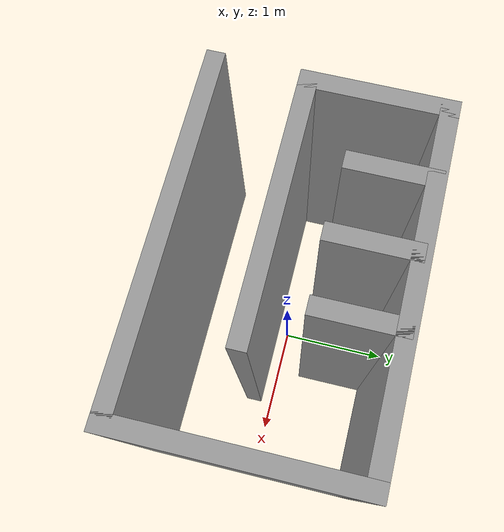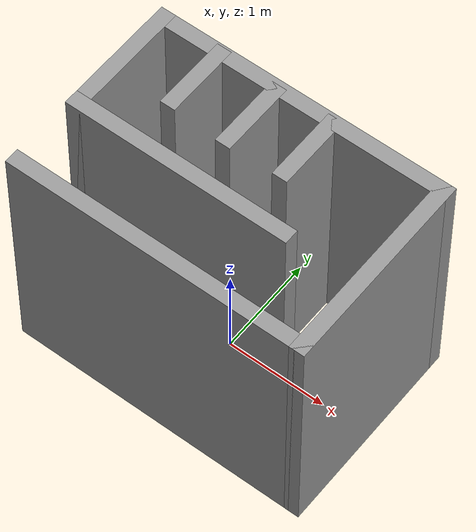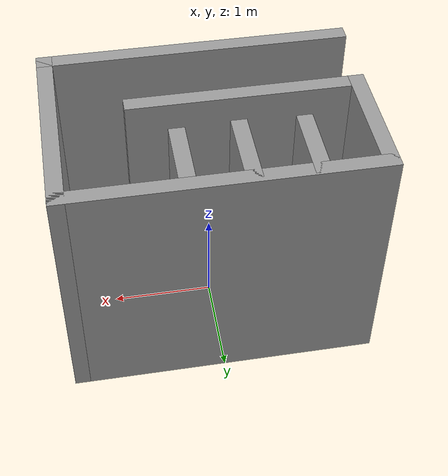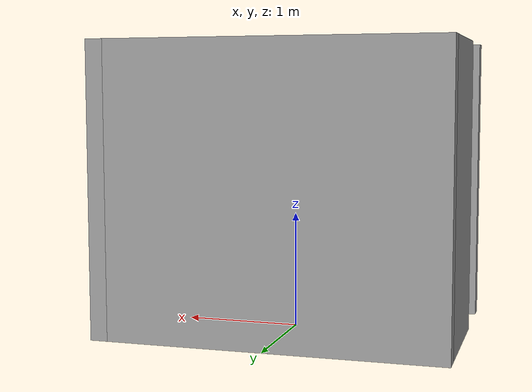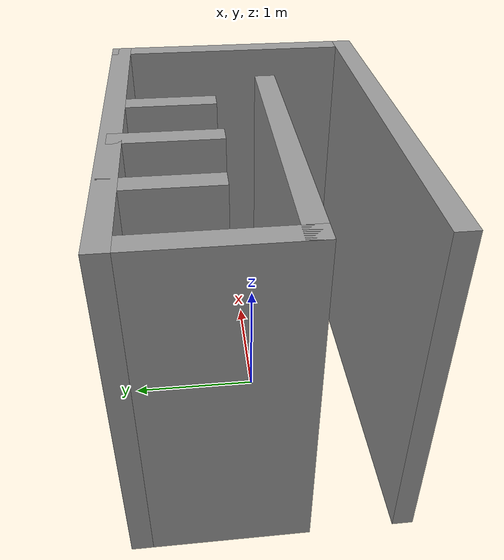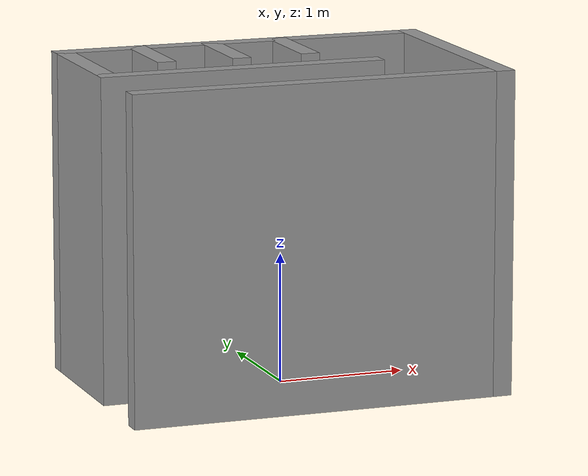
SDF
<?xml version='1.0'?>
<sdf version='1.7'>
  <model name='wrg_ros'>
    <pose>0 0 0 0 -0 0</pose>
    <link name='Wall_12'>
      <collision name='Wall_12_Collision'>
        <geometry>
          <box>
            <size>3 0.15 2.5</size>
          </box>
        </geometry>
        <pose>0 0 1.25 0 -0 0</pose>
      </collision>
      <visual name='Wall_12_Visual'>
        <pose>0 0 1.25 0 -0 0</pose>
        <geometry>
          <box>
            <size>3 0.15 2.5</size>
          </box>
        </geometry>
        <material>
          <script>
            <uri>file://media/materials/scripts/gazebo.material</uri>
            <name>Gazebo/Grey</name>
          </script>
          <ambient>1 1 1 1</ambient>
        </material>
        <meta>
          <layer>0</layer>
        </meta>
      </visual>
      <pose>-0 -0.925 0 0 -0 0</pose>
    </link>
    <link name='Wall_13'>
      <collision name='Wall_13_Collision'>
        <geometry>
          <box>
            <size>2 0.15 2.5</size>
          </box>
        </geometry>
        <pose>0 0 1.25 0 -0 0</pose>
      </collision>
      <visual name='Wall_13_Visual'>
        <pose>0 0 1.25 0 -0 0</pose>
        <geometry>
          <box>
            <size>2 0.15 2.5</size>
          </box>
        </geometry>
        <material>
          <script>
            <uri>file://media/materials/scripts/gazebo.material</uri>
            <name>Gazebo/Grey</name>
          </script>
          <ambient>1 1 1 1</ambient>
        </material>
        <meta>
          <layer>0</layer>
        </meta>
      </visual>
      <pose>1.425 0 0 0 -0 1.5708</pose>
    </link>
    <link name='Wall_17'>
      <collision name='Wall_17_Collision'>
        <geometry>
          <box>
            <size>3 0.15 2.5</size>
          </box>
        </geometry>
        <pose>0 0 1.25 0 -0 0</pose>
      </collision>
      <visual name='Wall_17_Visual'>
        <pose>0 0 1.25 0 -0 0</pose>
        <geometry>
          <box>
            <size>3 0.15 2.5</size>
          </box>
        </geometry>
        <material>
          <script>
            <uri>file://media/materials/scripts/gazebo.material</uri>
            <name>Gazebo/Grey</name>
          </script>
          <ambient>1 1 1 1</ambient>
        </material>
        <meta>
          <layer>0</layer>
        </meta>
      </visual>
      <pose>-0 0.925 0 0 -0 3.14159</pose>
    </link>
    <link name='Wall_18'>
      <collision name='Wall_18_Collision'>
        <geometry>
          <box>
            <size>1.25 0.15 2.5</size>
          </box>
        </geometry>
        <pose>0 0 1.25 0 -0 0</pose>
      </collision>
      <visual name='Wall_18_Visual'>
        <pose>0 0 1.25 0 -0 0</pose>
        <geometry>
          <box>
            <size>1.25 0.15 2.5</size>
          </box>
        </geometry>
        <material>
          <script>
            <uri>file://media/materials/scripts/gazebo.material</uri>
            <name>Gazebo/Grey</name>
          </script>
          <ambient>1 1 1 1</ambient>
        </material>
        <meta>
          <layer>0</layer>
        </meta>
      </visual>
      <pose>-1.425 0.375 0 0 -0 -1.5708</pose>
    </link>
    <link name='Wall_19'>
      <collision name='Wall_19_Collision'>
        <geometry>
          <box>
            <size>2.25 0.15 2.5</size>
          </box>
        </geometry>
        <pose>0 0 1.25 0 -0 0</pose>
      </collision>
      <visual name='Wall_19_Visual'>
        <pose>0 0 1.25 0 -0 0</pose>
        <geometry>
          <box>
            <size>2.25 0.15 2.5</size>
          </box>
        </geometry>
        <material>
          <script>
            <uri>file://media/materials/scripts/gazebo.material</uri>
            <name>Gazebo/Grey</name>
          </script>
          <ambient>1 1 1 1</ambient>
        </material>
        <meta>
          <layer>0</layer>
        </meta>
      </visual>
      <pose>-0.375 -0.175 0 0 -0 0</pose>
    </link>
    <link name='Wall_21'>
      <collision name='Wall_21_Collision'>
        <geometry>
          <box>
            <size>0.75 0.15 2.5</size>
          </box>
        </geometry>
        <pose>0 0 1.25 0 -0 0</pose>
      </collision>
      <visual name='Wall_21_Visual'>
        <pose>0 0 1.25 0 -0 0</pose>
        <geometry>
          <box>
            <size>0.75 0.15 2.5</size>
          </box>
        </geometry>
        <material>
          <script>
            <uri>file://media/materials/scripts/gazebo.material</uri>
            <name>Gazebo/Grey</name>
          </script>
          <ambient>1 1 1 1</ambient>
        </material>
        <meta>
          <layer>0</layer>
        </meta>
      </visual>
      <pose>-0.825 0.605 0 0 -0 -1.5708</pose>
    </link>
    <link name='Wall_23'>
      <collision name='Wall_23_Collision'>
        <geometry>
          <box>
            <size>0.75 0.15 2.5</size>
          </box>
        </geometry>
        <pose>0 0 1.25 0 -0 0</pose>
      </collision>
      <visual name='Wall_23_Visual'>
        <pose>0 0 1.25 0 -0 0</pose>
        <geometry>
          <box>
            <size>0.75 0.15 2.5</size>
          </box>
        </geometry>
        <material>
          <script>
            <uri>file://media/materials/scripts/gazebo.material</uri>
            <name>Gazebo/Grey</name>
          </script>
          <ambient>1 1 1 1</ambient>
        </material>
        <meta>
          <layer>0</layer>
        </meta>
      </visual>
      <pose>-0.235 0.575 0 0 -0 -1.5708</pose>
    </link>
    <link name='Wall_25'>
      <collision name='Wall_25_Collision'>
        <geometry>
          <box>
            <size>0.75 0.15 2.5</size>
          </box>
        </geometry>
        <pose>0 0 1.25 0 -0 0</pose>
      </collision>
      <visual name='Wall_25_Visual'>
        <pose>0 0 1.25 0 -0 0</pose>
        <geometry>
          <box>
            <size>0.75 0.15 2.5</size>
          </box>
        </geometry>
        <material>
          <script>
            <uri>file://media/materials/scripts/gazebo.material</uri>
            <name>Gazebo/Grey</name>
          </script>
          <ambient>1 1 1 1</ambient>
        </material>
        <meta>
          <layer>0</layer>
        </meta>
      </visual>
      <pose>0.325 0.595 0 0 -0 -1.5708</pose>
    </link>
    <static>1</static>
  </model>
</sdf>
